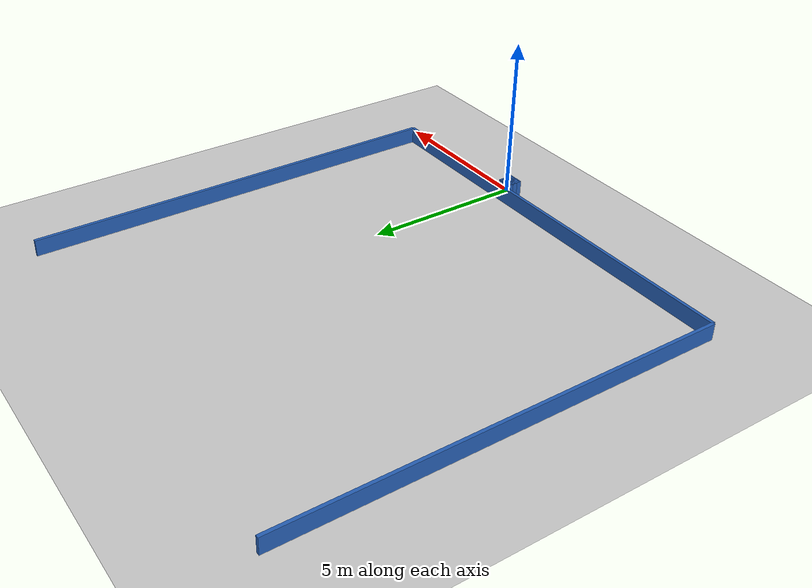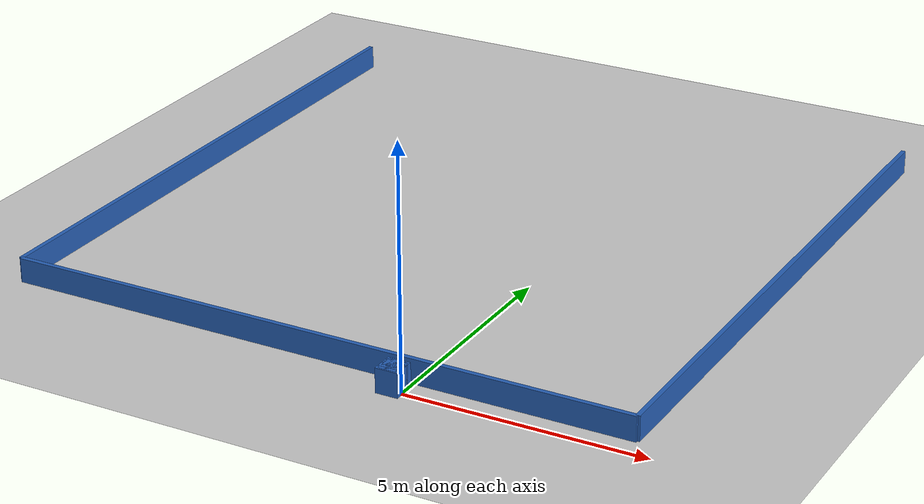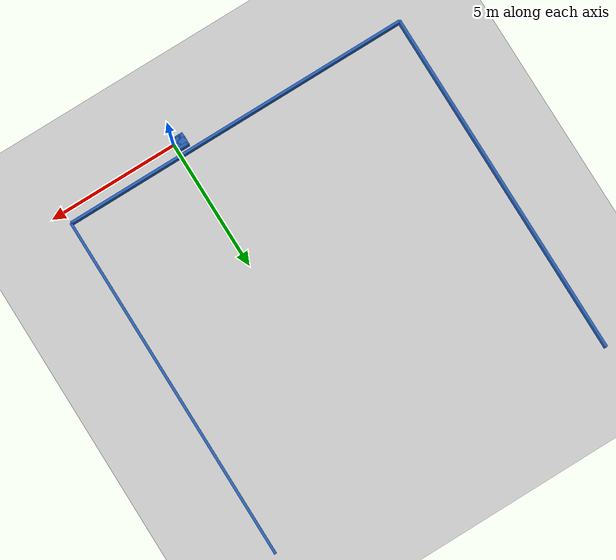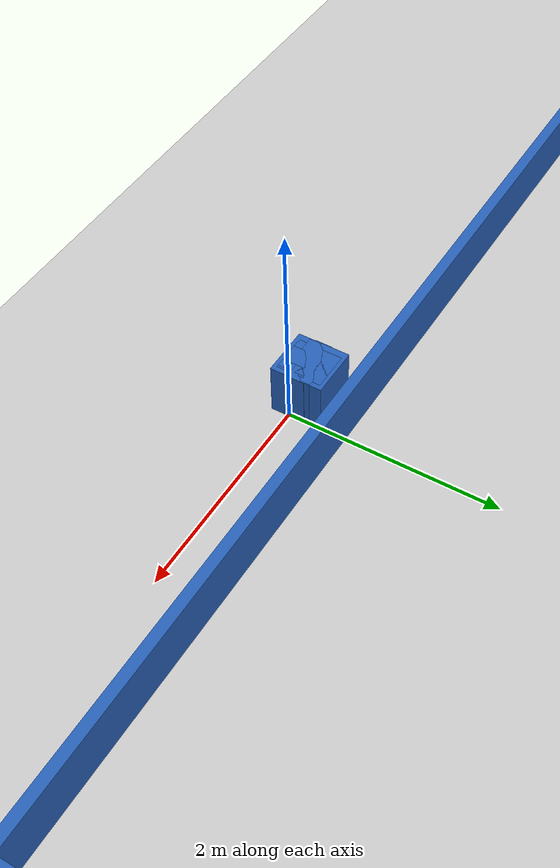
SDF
<?xml version="1.0" ?>
    <sdf version="1.5">
      <world name="default">
        <!-- A global light source -->
        <include>
          <uri>model://sun</uri>
        </include>
        <!-- A ground plane -->
        <include>
          <uri>model://ground_plane</uri>
        </include>

    <model name='libopen_space_final_T2B_87_56'>
      <static>1</static>
      <pose frame=''>-0.225000 0.075000 0.000000 0.000000 0.000000 0.000000</pose>
      <link name='link'>
        <inertial>
          <mass>1</mass>
          <inertia>
            <ixx>0.145833</ixx>
            <ixy>0</ixy>
            <ixz>0</ixz>
            <iyy>0.145833</iyy>
            <iyz>0</iyz>
            <izz>0.125</izz>
          </inertia>
        </inertial>
        <collision name='collision'>
          <geometry>
            <box>
              <size>0.38 0.42 1</size>
            </box>
          </geometry>
          <max_contacts>10</max_contacts>
          <surface>
            <contact>
              <ode/>
            </contact>
            <bounce/>
            <friction>
              <torsional>
                <ode/>
              </torsional>
              <ode/>
            </friction>
          </surface>
        </collision>
        <visual name='visual'>
          <geometry>
            <box>
              <size>0.38 0.42 1</size>
            </box>
          </geometry>
	    <material>
              <ambient>0.152000 0.379000 0.720000 1</ambient>
	      <diffuse>0.152000 0.379000 0.720000 1</diffuse>
          </material>
          <material>
            <script>
              <name>Gazebo/Grey</name>
              <uri>file://media/materials/scripts/gazebo.material</uri>
            </script>
          </material>
        </visual>
        <self_collide>0</self_collide>
        <kinematic>0</kinematic>
        <gravity>1</gravity>
      </link>
      <plugin name='libopen_space_final_T2B_87_56' filename='libopen_space_final_T2B_87_56.so'/>
    </model>

    <model name='libopen_space_final_T2B_81_4'>
      <static>1</static>
      <pose frame=''>-0.225000 0.075000 0.000000 0.000000 0.000000 0.000000</pose>
      <link name='link'>
        <inertial>
          <mass>1</mass>
          <inertia>
            <ixx>0.145833</ixx>
            <ixy>0</ixy>
            <ixz>0</ixz>
            <iyy>0.145833</iyy>
            <iyz>0</iyz>
            <izz>0.125</izz>
          </inertia>
        </inertial>
        <collision name='collision'>
          <geometry>
            <box>
              <size>0.18 0.42 1</size>
            </box>
          </geometry>
          <max_contacts>10</max_contacts>
          <surface>
            <contact>
              <ode/>
            </contact>
            <bounce/>
            <friction>
              <torsional>
                <ode/>
              </torsional>
              <ode/>
            </friction>
          </surface>
        </collision>
        <visual name='visual'>
          <geometry>
            <box>
              <size>0.18 0.42 1</size>
            </box>
          </geometry>
	    <material>
              <ambient>0.152000 0.379000 0.720000 1</ambient>
	      <diffuse>0.152000 0.379000 0.720000 1</diffuse>
          </material>
          <material>
            <script>
              <name>Gazebo/Grey</name>
              <uri>file://media/materials/scripts/gazebo.material</uri>
            </script>
          </material>
        </visual>
        <self_collide>0</self_collide>
        <kinematic>0</kinematic>
        <gravity>1</gravity>
      </link>
      <plugin name='libopen_space_final_T2B_81_4' filename='libopen_space_final_T2B_81_4.so'/>
    </model>

    <model name='libopen_space_final_T2B_119_99'>
      <static>1</static>
      <pose frame=''>-0.225000 0.075000 0.000000 0.000000 0.000000 0.000000</pose>
      <link name='link'>
        <inertial>
          <mass>1</mass>
          <inertia>
            <ixx>0.145833</ixx>
            <ixy>0</ixy>
            <ixz>0</ixz>
            <iyy>0.145833</iyy>
            <iyz>0</iyz>
            <izz>0.125</izz>
          </inertia>
        </inertial>
        <collision name='collision'>
          <geometry>
            <box>
              <size>0.46 0.27 1</size>
            </box>
          </geometry>
          <max_contacts>10</max_contacts>
          <surface>
            <contact>
              <ode/>
            </contact>
            <bounce/>
            <friction>
              <torsional>
                <ode/>
              </torsional>
              <ode/>
            </friction>
          </surface>
        </collision>
        <visual name='visual'>
          <geometry>
            <box>
              <size>0.46 0.27 1</size>
            </box>
          </geometry>
	    <material>
              <ambient>0.152000 0.379000 0.720000 1</ambient>
	      <diffuse>0.152000 0.379000 0.720000 1</diffuse>
          </material>
          <material>
            <script>
              <name>Gazebo/Grey</name>
              <uri>file://media/materials/scripts/gazebo.material</uri>
            </script>
          </material>
        </visual>
        <self_collide>0</self_collide>
        <kinematic>0</kinematic>
        <gravity>1</gravity>
      </link>
      <plugin name='libopen_space_final_T2B_119_99' filename='libopen_space_final_T2B_119_99.so'/>
    </model>

    <model name='libopen_space_final_T2B_112_28'>
      <static>1</static>
      <pose frame=''>-0.225000 0.075000 0.000000 0.000000 0.000000 0.000000</pose>
      <link name='link'>
        <inertial>
          <mass>1</mass>
          <inertia>
            <ixx>0.145833</ixx>
            <ixy>0</ixy>
            <ixz>0</ixz>
            <iyy>0.145833</iyy>
            <iyz>0</iyz>
            <izz>0.125</izz>
          </inertia>
        </inertial>
        <collision name='collision'>
          <geometry>
            <box>
              <size>0.48 0.16 1</size>
            </box>
          </geometry>
          <max_contacts>10</max_contacts>
          <surface>
            <contact>
              <ode/>
            </contact>
            <bounce/>
            <friction>
              <torsional>
                <ode/>
              </torsional>
              <ode/>
            </friction>
          </surface>
        </collision>
        <visual name='visual'>
          <geometry>
            <box>
              <size>0.48 0.16 1</size>
            </box>
          </geometry>
	    <material>
              <ambient>0.152000 0.379000 0.720000 1</ambient>
	      <diffuse>0.152000 0.379000 0.720000 1</diffuse>
          </material>
          <material>
            <script>
              <name>Gazebo/Grey</name>
              <uri>file://media/materials/scripts/gazebo.material</uri>
            </script>
          </material>
        </visual>
        <self_collide>0</self_collide>
        <kinematic>0</kinematic>
        <gravity>1</gravity>
      </link>
      <plugin name='libopen_space_final_T2B_112_28' filename='libopen_space_final_T2B_112_28.so'/>
    </model>

    <model name='libopen_space_final_T2B_112_54'>
      <static>1</static>
      <pose frame=''>-0.225000 0.075000 0.000000 0.000000 0.000000 0.000000</pose>
      <link name='link'>
        <inertial>
          <mass>1</mass>
          <inertia>
            <ixx>0.145833</ixx>
            <ixy>0</ixy>
            <ixz>0</ixz>
            <iyy>0.145833</iyy>
            <iyz>0</iyz>
            <izz>0.125</izz>
          </inertia>
        </inertial>
        <collision name='collision'>
          <geometry>
            <box>
              <size>0.47 0.26 1</size>
            </box>
          </geometry>
          <max_contacts>10</max_contacts>
          <surface>
            <contact>
              <ode/>
            </contact>
            <bounce/>
            <friction>
              <torsional>
                <ode/>
              </torsional>
              <ode/>
            </friction>
          </surface>
        </collision>
        <visual name='visual'>
          <geometry>
            <box>
              <size>0.47 0.26 1</size>
            </box>
          </geometry>
	    <material>
              <ambient>0.152000 0.379000 0.720000 1</ambient>
	      <diffuse>0.152000 0.379000 0.720000 1</diffuse>
          </material>
          <material>
            <script>
              <name>Gazebo/Grey</name>
              <uri>file://media/materials/scripts/gazebo.material</uri>
            </script>
          </material>
        </visual>
        <self_collide>0</self_collide>
        <kinematic>0</kinematic>
        <gravity>1</gravity>
      </link>
      <plugin name='libopen_space_final_T2B_112_54' filename='libopen_space_final_T2B_112_54.so'/>
    </model>

    <model name='libopen_space_final_T2B_114_22'>
      <static>1</static>
      <pose frame=''>-0.225000 0.075000 0.000000 0.000000 0.000000 0.000000</pose>
      <link name='link'>
        <inertial>
          <mass>1</mass>
          <inertia>
            <ixx>0.145833</ixx>
            <ixy>0</ixy>
            <ixz>0</ixz>
            <iyy>0.145833</iyy>
            <iyz>0</iyz>
            <izz>0.125</izz>
          </inertia>
        </inertial>
        <collision name='collision'>
          <geometry>
            <box>
              <size>0.44 0.37 1</size>
            </box>
          </geometry>
          <max_contacts>10</max_contacts>
          <surface>
            <contact>
              <ode/>
            </contact>
            <bounce/>
            <friction>
              <torsional>
                <ode/>
              </torsional>
              <ode/>
            </friction>
          </surface>
        </collision>
        <visual name='visual'>
          <geometry>
            <box>
              <size>0.44 0.37 1</size>
            </box>
          </geometry>
	    <material>
              <ambient>0.152000 0.379000 0.720000 1</ambient>
	      <diffuse>0.152000 0.379000 0.720000 1</diffuse>
          </material>
          <material>
            <script>
              <name>Gazebo/Grey</name>
              <uri>file://media/materials/scripts/gazebo.material</uri>
            </script>
          </material>
        </visual>
        <self_collide>0</self_collide>
        <kinematic>0</kinematic>
        <gravity>1</gravity>
      </link>
      <plugin name='libopen_space_final_T2B_114_22' filename='libopen_space_final_T2B_114_22.so'/>
    </model>

    <model name='libopen_space_final_T2B_52_73'>
      <static>1</static>
      <pose frame=''>-0.225000 0.075000 0.000000 0.000000 0.000000 0.000000</pose>
      <link name='link'>
        <inertial>
          <mass>1</mass>
          <inertia>
            <ixx>0.145833</ixx>
            <ixy>0</ixy>
            <ixz>0</ixz>
            <iyy>0.145833</iyy>
            <iyz>0</iyz>
            <izz>0.125</izz>
          </inertia>
        </inertial>
        <collision name='collision'>
          <geometry>
            <box>
              <size>0.47 0.49 1</size>
            </box>
          </geometry>
          <max_contacts>10</max_contacts>
          <surface>
            <contact>
              <ode/>
            </contact>
            <bounce/>
            <friction>
              <torsional>
                <ode/>
              </torsional>
              <ode/>
            </friction>
          </surface>
        </collision>
        <visual name='visual'>
          <geometry>
            <box>
              <size>0.47 0.49 1</size>
            </box>
          </geometry>
	    <material>
              <ambient>0.152000 0.379000 0.720000 1</ambient>
	      <diffuse>0.152000 0.379000 0.720000 1</diffuse>
          </material>
          <material>
            <script>
              <name>Gazebo/Grey</name>
              <uri>file://media/materials/scripts/gazebo.material</uri>
            </script>
          </material>
        </visual>
        <self_collide>0</self_collide>
        <kinematic>0</kinematic>
        <gravity>1</gravity>
      </link>
      <plugin name='libopen_space_final_T2B_52_73' filename='libopen_space_final_T2B_52_73.so'/>
    </model>

    <model name='libopen_space_final_T2B_111_18'>
      <static>1</static>
      <pose frame=''>-0.225000 0.075000 0.000000 0.000000 0.000000 0.000000</pose>
      <link name='link'>
        <inertial>
          <mass>1</mass>
          <inertia>
            <ixx>0.145833</ixx>
            <ixy>0</ixy>
            <ixz>0</ixz>
            <iyy>0.145833</iyy>
            <iyz>0</iyz>
            <izz>0.125</izz>
          </inertia>
        </inertial>
        <collision name='collision'>
          <geometry>
            <box>
              <size>0.34 0.42 1</size>
            </box>
          </geometry>
          <max_contacts>10</max_contacts>
          <surface>
            <contact>
              <ode/>
            </contact>
            <bounce/>
            <friction>
              <torsional>
                <ode/>
              </torsional>
              <ode/>
            </friction>
          </surface>
        </collision>
        <visual name='visual'>
          <geometry>
            <box>
              <size>0.34 0.42 1</size>
            </box>
          </geometry>
	    <material>
              <ambient>0.152000 0.379000 0.720000 1</ambient>
	      <diffuse>0.152000 0.379000 0.720000 1</diffuse>
          </material>
          <material>
            <script>
              <name>Gazebo/Grey</name>
              <uri>file://media/materials/scripts/gazebo.material</uri>
            </script>
          </material>
        </visual>
        <self_collide>0</self_collide>
        <kinematic>0</kinematic>
        <gravity>1</gravity>
      </link>
      <plugin name='libopen_space_final_T2B_111_18' filename='libopen_space_final_T2B_111_18.so'/>
    </model>

    <model name='libopen_space_final_T2B_84_5'>
      <static>1</static>
      <pose frame=''>-0.225000 0.075000 0.000000 0.000000 0.000000 0.000000</pose>
      <link name='link'>
        <inertial>
          <mass>1</mass>
          <inertia>
            <ixx>0.145833</ixx>
            <ixy>0</ixy>
            <ixz>0</ixz>
            <iyy>0.145833</iyy>
            <iyz>0</iyz>
            <izz>0.125</izz>
          </inertia>
        </inertial>
        <collision name='collision'>
          <geometry>
            <box>
              <size>0.13 0.32 1</size>
            </box>
          </geometry>
          <max_contacts>10</max_contacts>
          <surface>
            <contact>
              <ode/>
            </contact>
            <bounce/>
            <friction>
              <torsional>
                <ode/>
              </torsional>
              <ode/>
            </friction>
          </surface>
        </collision>
        <visual name='visual'>
          <geometry>
            <box>
              <size>0.13 0.32 1</size>
            </box>
          </geometry>
	    <material>
              <ambient>0.152000 0.379000 0.720000 1</ambient>
	      <diffuse>0.152000 0.379000 0.720000 1</diffuse>
          </material>
          <material>
            <script>
              <name>Gazebo/Grey</name>
              <uri>file://media/materials/scripts/gazebo.material</uri>
            </script>
          </material>
        </visual>
        <self_collide>0</self_collide>
        <kinematic>0</kinematic>
        <gravity>1</gravity>
      </link>
      <plugin name='libopen_space_final_T2B_84_5' filename='libopen_space_final_T2B_84_5.so'/>
    </model>

    <model name='libopen_space_final_T2B_80_70'>
      <static>1</static>
      <pose frame=''>-0.225000 0.075000 0.000000 0.000000 0.000000 0.000000</pose>
      <link name='link'>
        <inertial>
          <mass>1</mass>
          <inertia>
            <ixx>0.145833</ixx>
            <ixy>0</ixy>
            <ixz>0</ixz>
            <iyy>0.145833</iyy>
            <iyz>0</iyz>
            <izz>0.125</izz>
          </inertia>
        </inertial>
        <collision name='collision'>
          <geometry>
            <box>
              <size>0.39 0.11 1</size>
            </box>
          </geometry>
          <max_contacts>10</max_contacts>
          <surface>
            <contact>
              <ode/>
            </contact>
            <bounce/>
            <friction>
              <torsional>
                <ode/>
              </torsional>
              <ode/>
            </friction>
          </surface>
        </collision>
        <visual name='visual'>
          <geometry>
            <box>
              <size>0.39 0.11 1</size>
            </box>
          </geometry>
	    <material>
              <ambient>0.152000 0.379000 0.720000 1</ambient>
	      <diffuse>0.152000 0.379000 0.720000 1</diffuse>
          </material>
          <material>
            <script>
              <name>Gazebo/Grey</name>
              <uri>file://media/materials/scripts/gazebo.material</uri>
            </script>
          </material>
        </visual>
        <self_collide>0</self_collide>
        <kinematic>0</kinematic>
        <gravity>1</gravity>
      </link>
      <plugin name='libopen_space_final_T2B_80_70' filename='libopen_space_final_T2B_80_70.so'/>
    </model>

        <model name='bottom_wall'>
          <static>1</static>
          <pose frame=''>-2.25 0.5 0.000000 0.000000 0.000000 1.57079632</pose>
          <link name='link'>
            <inertial>
            <mass>1</mass>
            <inertia>
              <ixx>0.145833</ixx>
              <ixy>0</ixy>
              <ixz>0</ixz>
              <iyy>0.145833</iyy>
              <iyz>0</iyz>
              <izz>0.125</izz>
            </inertia>
            </inertial>
            <collision name='collision'>
            <geometry>
              <box>
              <size>0.1 13.5 1</size>
              </box>
            </geometry>
            <max_contacts>10</max_contacts>
            <surface>
              <contact>
              <ode/>
              </contact>
              <bounce/>
              <friction>
              <torsional>
                <ode/>
              </torsional>
              <ode/>
              </friction>
            </surface>
            </collision>
            <visual name='visual'>
            <geometry>
              <box>
              <size>0.1 13.5 1</size>
              </box>
            </geometry>
            <material>
              <ambient>0.152000 0.379000 0.720000 1</ambient>
            <diffuse>0.152000 0.379000 0.720000 1</diffuse>
            </material>
            <material>
              <script>
              <name>Gazebo/Grey</name>
              <uri>file://media/materials/scripts/gazebo.material</uri>
              </script>
            </material>
            </visual>
            <self_collide>0</self_collide>
            <kinematic>0</kinematic>
            <gravity>1</gravity>
          </link>
        </model>

        <model name='left_wall'>
          <static>1</static>
          <pose frame=''>-9 7.25 0.000000 0.000000 0.000000 0.000000</pose>
          <link name='link'>
            <inertial>
            <mass>1</mass>
            <inertia>
              <ixx>0.145833</ixx>
              <ixy>0</ixy>
              <ixz>0</ixz>
              <iyy>0.145833</iyy>
              <iyz>0</iyz>
              <izz>0.125</izz>
            </inertia>
            </inertial>
            <collision name='collision'>
            <geometry>
              <box>
              <size>0.1 13.5 1</size>
              </box>
            </geometry>
            <max_contacts>10</max_contacts>
            <surface>
              <contact>
              <ode/>
              </contact>
              <bounce/>
              <friction>
              <torsional>
                <ode/>
              </torsional>
              <ode/>
              </friction>
            </surface>
            </collision>
            <visual name='visual'>
            <geometry>
              <box>
              <size>0.1 13.5 1</size>
              </box>
            </geometry>
            <material>
              <ambient>0.152000 0.379000 0.720000 1</ambient>
            <diffuse>0.152000 0.379000 0.720000 1</diffuse>
            </material>
            <material>
              <script>
              <name>Gazebo/Grey</name>
              <uri>file://media/materials/scripts/gazebo.material</uri>
              </script>
            </material>
            </visual>
            <self_collide>0</self_collide>
            <kinematic>0</kinematic>
            <gravity>1</gravity>
          </link>
        </model>

        <model name='right_wall'>
          <static>1</static>
          <pose frame=''>4.5 7.25 0.000000 0.000000 0.000000 0.000000</pose>
          <link name='link'>
            <inertial>
            <mass>1</mass>
            <inertia>
              <ixx>0.145833</ixx>
              <ixy>0</ixy>
              <ixz>0</ixz>
              <iyy>0.145833</iyy>
              <iyz>0</iyz>
              <izz>0.125</izz>
            </inertia>
            </inertial>
            <collision name='collision'>
            <geometry>
              <box>
              <size>0.1 13.5 1</size>
              </box>
            </geometry>
            <max_contacts>10</max_contacts>
            <surface>
              <contact>
              <ode/>
              </contact>
              <bounce/>
              <friction>
              <torsional>
                <ode/>
              </torsional>
              <ode/>
              </friction>
            </surface>
            </collision>
            <visual name='visual'>
            <geometry>
              <box>
              <size>0.1 13.5 1</size>
              </box>
            </geometry>
            <material>
              <ambient>0.152000 0.379000 0.720000 1</ambient>
            <diffuse>0.152000 0.379000 0.720000 1</diffuse>
            </material>
            <material>
              <script>
              <name>Gazebo/Grey</name>
              <uri>file://media/materials/scripts/gazebo.material</uri>
              </script>
            </material>
            </visual>
            <self_collide>0</self_collide>
            <kinematic>0</kinematic>
            <gravity>1</gravity>
          </link>
        </model>

      </world>
    </sdf>"
